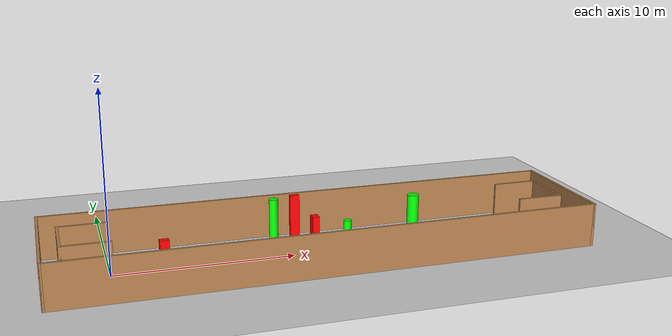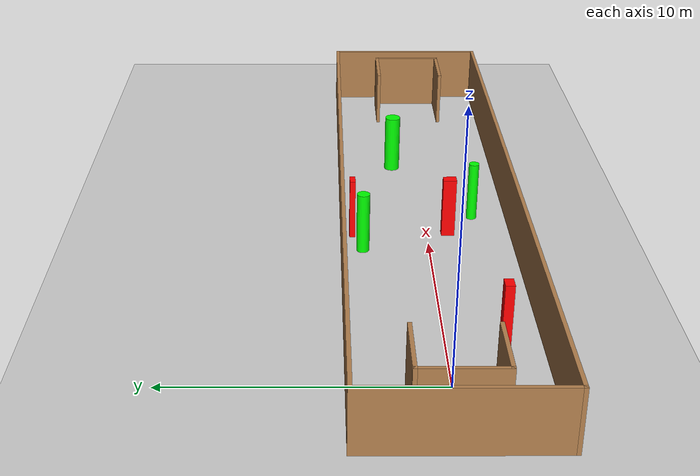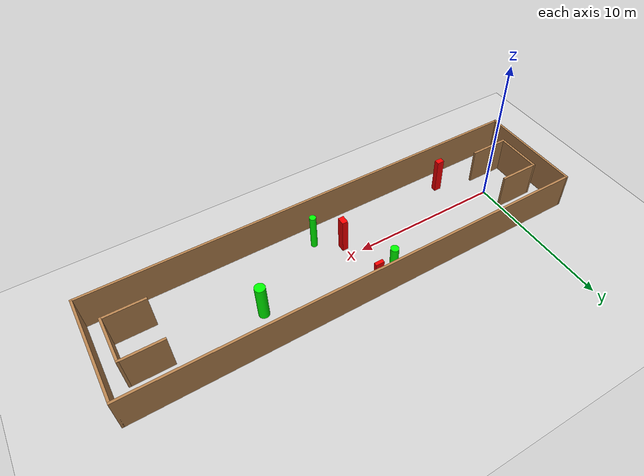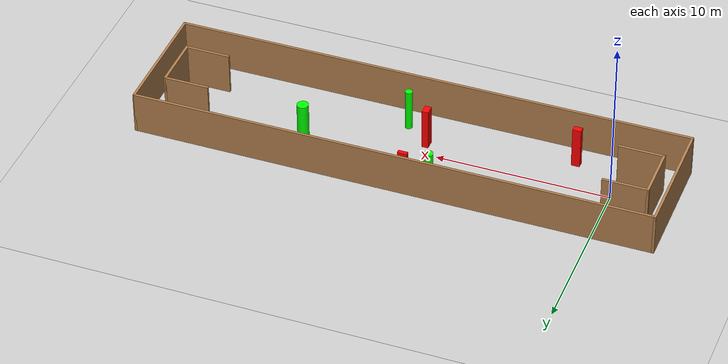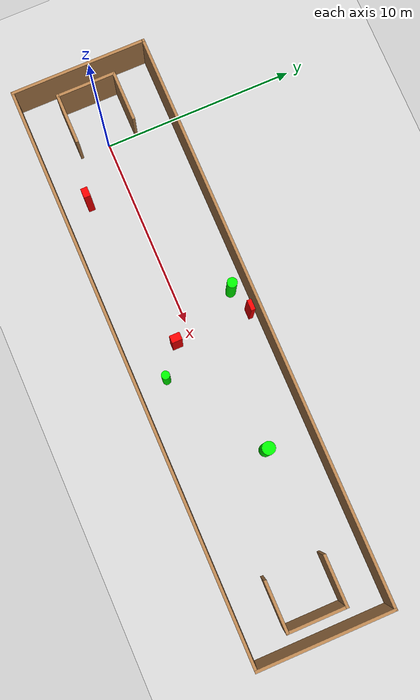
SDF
<sdf version="1.7">
 <world name="default">
  <light name="sun" type="directional">
   <pose>0 0 10 0 -0 0</pose>
   <diffuse>0.8 0.8 0.8 1</diffuse>
   <specular>0.2 0.2 0.2 1</specular>
   <attenuation>
    <range>1000</range>
    <constant>0.9</constant>
    <linear>0.01</linear>
    <quadratic>0.001</quadratic>
   </attenuation>
   <direction>-0.5 0.1 -0.9</direction>
   <spot><inner_angle>0</inner_angle><outer_angle>0</outer_angle><falloff>0</falloff></spot>
  </light>
  <model name="ground_plane">
   <static>1</static>
   <link name="link">
    <collision name="collision">
     <geometry><plane><normal>0 0 1</normal><size>100 100</size></plane></geometry>
     <surface>
      <contact><collide_bitmask>65535</collide_bitmask></contact>
      <friction><ode><mu>100</mu><mu2>50</mu2></ode></friction>
     </surface>
    </collision>
    <visual name="visual">
     <cast_shadows>0</cast_shadows>
     <geometry><plane><normal>0 0 1</normal><size>100 100</size></plane></geometry>
     <material>
      <script><uri>file://media/materials/scripts/gazebo.material</uri><name>Gazebo/Grey</name></script>
     </material>
    </visual>
   </link>
  </model>
  <gravity>0 0 -9.8</gravity>
  <magnetic_field>6e-06 2.3e-05 -4.2e-05</magnetic_field>
  <atmosphere type="adiabatic"/>
  <physics type="ode">
   <max_step_size>0.001</max_step_size>
   <real_time_factor>1</real_time_factor>
   <real_time_update_rate>1000</real_time_update_rate>
  </physics>
  <scene><ambient>0.4 0.4 0.4 1</ambient><background>0.7 0.7 0.7 1</background><shadows>1</shadows></scene>
  <spherical_coordinates>
   <surface_model>EARTH_WGS84</surface_model>
   <latitude_deg>0</latitude_deg>
   <longitude_deg>0</longitude_deg>
   <elevation>0</elevation>
   <heading_deg>0</heading_deg>
  </spherical_coordinates>
  <model name="my_base_walls">
   <link name="Wall_0">
    <collision name="Wall_0_Collision">
     <geometry><box><size>7.15 0.15 2.5</size></box></geometry>
     <pose>0 0 1.25 0 -0 0</pose>
    </collision>
    <visual name="Wall_0_Visual">
     <pose>0 0 1.25 0 -0 0</pose>
     <geometry><box><size>7.15 0.15 2.5</size></box></geometry>
     <material>
      <script><uri>file://media/materials/scripts/gazebo.material</uri><name>Gazebo/Wood</name></script>
      <ambient>1 1 1 1</ambient>
     </material>
     <meta><layer>0</layer></meta>
    </visual>
    <pose>-15 0 0 0 -0 1.5708</pose>
   </link>
   <link name="Wall_10">
    <collision name="Wall_10_Collision">
     <geometry><box><size>2.65 0.15 2.5</size></box></geometry>
     <pose>0 0 1.25 0 -0 0</pose>
    </collision>
    <visual name="Wall_10_Visual">
     <pose>0 0 1.25 0 -0 0</pose>
     <geometry><box><size>2.65 0.15 2.5</size></box></geometry>
     <material>
      <script><uri>file://media/materials/scripts/gazebo.material</uri><name>Gazebo/Wood</name></script>
      <ambient>1 1 1 1</ambient>
     </material>
     <meta><layer>0</layer></meta>
    </visual>
    <pose>-12.75 -1.5 0 0 -0 0</pose>
   </link>
   <link name="Wall_12">
    <collision name="Wall_12_Collision">
     <geometry><box><size>2.65 0.15 2.5</size></box></geometry>
     <pose>0 0 1.25 0 -0 0</pose>
    </collision>
    <visual name="Wall_12_Visual">
     <pose>0 0 1.25 0 -0 0</pose>
     <geometry><box><size>2.65 0.15 2.5</size></box></geometry>
     <material>
      <script><uri>file://media/materials/scripts/gazebo.material</uri><name>Gazebo/Wood</name></script>
      <ambient>1 1 1 1</ambient>
     </material>
     <meta><layer>0</layer></meta>
    </visual>
    <pose>-12.75 1.5 0 0 -0 0</pose>
   </link>
   <link name="Wall_14">
    <collision name="Wall_14_Collision">
     <geometry><box><size>3.15 0.15 2.5</size></box></geometry>
     <pose>0 0 1.25 0 -0 0</pose>
    </collision>
    <visual name="Wall_14_Visual">
     <pose>0 0 1.25 0 -0 0</pose>
     <geometry><box><size>3.15 0.15 2.5</size></box></geometry>
     <material>
      <script><uri>file://media/materials/scripts/gazebo.material</uri><name>Gazebo/Wood</name></script>
      <ambient>1 1 1 1</ambient>
     </material>
     <meta><layer>0</layer></meta>
    </visual>
    <pose>14 0 0 0 -0 -1.5708</pose>
   </link>
   <link name="Wall_15">
    <collision name="Wall_15_Collision">
     <geometry><box><size>2.65 0.15 2.5</size></box></geometry>
     <pose>0 0 1.25 0 -0 0</pose>
    </collision>
    <visual name="Wall_15_Visual">
     <pose>0 0 1.25 0 -0 0</pose>
     <geometry><box><size>2.65 0.15 2.5</size></box></geometry>
     <material>
      <script><uri>file://media/materials/scripts/gazebo.material</uri><name>Gazebo/Wood</name></script>
      <ambient>1 1 1 1</ambient>
     </material>
     <meta><layer>0</layer></meta>
    </visual>
    <pose>12.75 -1.5 0 0 -0 3.14159</pose>
   </link>
   <link name="Wall_17">
    <collision name="Wall_17_Collision">
     <geometry><box><size>2.65 0.15 2.5</size></box></geometry>
     <pose>0 0 1.25 0 -0 0</pose>
    </collision>
    <visual name="Wall_17_Visual">
     <pose>0 0 1.25 0 -0 0</pose>
     <geometry><box><size>2.65 0.15 2.5</size></box></geometry>
     <material>
      <script><uri>file://media/materials/scripts/gazebo.material</uri><name>Gazebo/Wood</name></script>
      <ambient>1 1 1 1</ambient>
     </material>
     <meta><layer>0</layer></meta>
    </visual>
    <pose>12.75 1.5 0 0 -0 3.14159</pose>
   </link>
   <link name="Wall_2">
    <collision name="Wall_2_Collision">
     <geometry><box><size>30.15 0.15 2.5</size></box></geometry>
     <pose>0 0 1.25 0 -0 0</pose>
    </collision>
    <visual name="Wall_2_Visual">
     <pose>0 0 1.25 0 -0 0</pose>
     <geometry><box><size>30.15 0.15 2.5</size></box></geometry>
     <material>
      <script><uri>file://media/materials/scripts/gazebo.material</uri><name>Gazebo/Wood</name></script>
      <ambient>1 1 1 1</ambient>
     </material>
     <meta><layer>0</layer></meta>
    </visual>
    <pose>-0 -3.5 0 0 -0 0</pose>
   </link>
   <link name="Wall_4">
    <collision name="Wall_4_Collision">
     <geometry><box><size>30.15 0.15 2.5</size></box></geometry>
     <pose>0 0 1.25 0 -0 0</pose>
    </collision>
    <visual name="Wall_4_Visual">
     <pose>0 0 1.25 0 -0 0</pose>
     <geometry><box><size>30.15 0.15 2.5</size></box></geometry>
     <material>
      <script><uri>file://media/materials/scripts/gazebo.material</uri><name>Gazebo/Wood</name></script>
      <ambient>1 1 1 1</ambient>
     </material>
     <meta><layer>0</layer></meta>
    </visual>
    <pose>-0 3.5 0 0 -0 0</pose>
   </link>
   <link name="Wall_6">
    <collision name="Wall_6_Collision">
     <geometry><box><size>7.15 0.15 2.5</size></box></geometry>
     <pose>0 0 1.25 0 -0 0</pose>
    </collision>
    <visual name="Wall_6_Visual">
     <pose>0 0 1.25 0 -0 0</pose>
     <geometry><box><size>7.15 0.15 2.5</size></box></geometry>
     <material>
      <script><uri>file://media/materials/scripts/gazebo.material</uri><name>Gazebo/Wood</name></script>
      <ambient>1 1 1 1</ambient>
     </material>
     <meta><layer>0</layer></meta>
    </visual>
    <pose>15 0 0 0 -0 -1.5708</pose>
   </link>
   <link name="Wall_9">
    <collision name="Wall_9_Collision">
     <geometry><box><size>3.15 0.15 2.5</size></box></geometry>
     <pose>0 0 1.25 0 -0 0</pose>
    </collision>
    <visual name="Wall_9_Visual">
     <pose>0 0 1.25 0 -0 0</pose>
     <geometry><box><size>3.15 0.15 2.5</size></box></geometry>
     <material>
      <script><uri>file://media/materials/scripts/gazebo.material</uri><name>Gazebo/Wood</name></script>
      <ambient>1 1 1 1</ambient>
     </material>
     <meta><layer>0</layer></meta>
    </visual>
    <pose>-14 0 0 0 -0 -1.5708</pose>
   </link>
   <static>1</static>
   <pose>11.5 0 0 0 -0 0</pose>
  </model>
  <model name="cylinder1">
   <static>1</static>
   <link name="link">
    <inertial>
     <mass>1</mass>
     <inertia><ixx>0.5</ixx><ixy>0</ixy><ixz>0</ixz><iyy>0.5</iyy><iyz>0</iyz><izz>1</izz></inertia>
    </inertial>
    <collision name="collision">
     <geometry><cylinder><radius>0.25907097742743457</radius><length>2.5</length></cylinder></geometry>
    </collision>
    <visual name="visual">
     <geometry><cylinder><radius>0.25907097742743457</radius><length>2.5</length></cylinder></geometry>
     <material>
      <ambient>0 1 0 1</ambient>
      <diffuse>0 1 0 1</diffuse>
      <specular>0.1 0.1 0.1 1</specular>
      <emissive>0 0 0 0</emissive>
     </material>
    </visual>
   </link>
   <pose>9.498819497092915 2.6853807154620712 1.25 0 0 0</pose>
  </model>
  <model name="cylinder2">
   <static>1</static>
   <link name="link">
    <inertial>
     <mass>1</mass>
     <inertia><ixx>0.5</ixx><ixy>0</ixy><ixz>0</ixz><iyy>0.5</iyy><iyz>0</iyz><izz>1</izz></inertia>
    </inertial>
    <collision name="collision">
     <geometry><cylinder><radius>0.3341498275799542</radius><length>2.5</length></cylinder></geometry>
    </collision>
    <visual name="visual">
     <geometry><cylinder><radius>0.3341498275799542</radius><length>2.5</length></cylinder></geometry>
     <material>
      <ambient>0 1 0 1</ambient>
      <diffuse>0 1 0 1</diffuse>
      <specular>0.1 0.1 0.1 1</specular>
      <emissive>0 0 0 0</emissive>
     </material>
    </visual>
   </link>
   <pose>17.44026969455144 1.1111018340277674 1.25 0 0 0</pose>
  </model>
  <model name="cylinder3">
   <static>1</static>
   <link name="link">
    <inertial>
     <mass>1</mass>
     <inertia><ixx>0.5</ixx><ixy>0</ixy><ixz>0</ixz><iyy>0.5</iyy><iyz>0</iyz><izz>1</izz></inertia>
    </inertial>
    <collision name="collision">
     <geometry><cylinder><radius>0.21233428416815298</radius><length>2.5</length></cylinder></geometry>
    </collision>
    <visual name="visual">
     <geometry><cylinder><radius>0.21233428416815298</radius><length>2.5</length></cylinder></geometry>
     <material>
      <ambient>0 1 0 1</ambient>
      <diffuse>0 1 0 1</diffuse>
      <specular>0.1 0.1 0.1 1</specular>
      <emissive>0 0 0 0</emissive>
     </material>
    </visual>
   </link>
   <pose>12.357870774014712 -2.004052245603533 1.25 0 0 0</pose>
  </model>
  <model name="box1">
   <static>1</static>
   <link name="link">
    <inertial>
     <mass>1</mass>
     <inertia><ixx>0.083</ixx><ixy>0</ixy><ixz>0</ixz><iyy>0.083</iyy><iyz>0</iyz><izz>0.083</izz></inertia>
    </inertial>
    <collision name="collision">
     <geometry><box><size>0.38176033665293707 0.5338177229446267 2.5</size></box></geometry>
    </collision>
    <visual name="visual">
     <geometry><box><size>0.38176033665293707 0.5338177229446267 2.5</size></box></geometry>
     <material>
      <ambient>1 0 0 1</ambient>
      <diffuse>1 0 0 1</diffuse>
      <specular>0.1 0.1 0.1 1</specular>
      <emissive>0 0 0 0</emissive>
     </material>
    </visual>
    <sensor name="my_contact" type="contact">
     <contact><collision>box_collision</collision><topic>__default_topic__</topic></contact>
    </sensor>
   </link>
   <pose>10.892803442948093 -0.8552905539492373 1.25 0 0 0</pose>
  </model>
  <model name="box2">
   <static>1</static>
   <link name="link">
    <inertial>
     <mass>1</mass>
     <inertia><ixx>0.083</ixx><ixy>0</ixy><ixz>0</ixz><iyy>0.083</iyy><iyz>0</iyz><izz>0.083</izz></inertia>
    </inertial>
    <collision name="collision">
     <geometry><box><size>0.5536366266542554 0.22513640946082214 2.5</size></box></geometry>
    </collision>
    <visual name="visual">
     <geometry><box><size>0.5536366266542554 0.22513640946082214 2.5</size></box></geometry>
     <material>
      <ambient>1 0 0 1</ambient>
      <diffuse>1 0 0 1</diffuse>
      <specular>0.1 0.1 0.1 1</specular>
      <emissive>0 0 0 0</emissive>
     </material>
    </visual>
    <sensor name="my_contact" type="contact">
     <contact><collision>box_collision</collision><topic>__default_topic__</topic></contact>
    </sensor>
   </link>
   <pose>10.84982304424855 3.09073977815763 1.25 0 0 0</pose>
  </model>
  <model name="box3">
   <static>1</static>
   <link name="link">
    <inertial>
     <mass>1</mass>
     <inertia><ixx>0.083</ixx><ixy>0</ixy><ixz>0</ixz><iyy>0.083</iyy><iyz>0</iyz><izz>0.083</izz></inertia>
    </inertial>
    <collision name="collision">
     <geometry><box><size>0.49278660163090793 0.346201300868022 2.5</size></box></geometry>
    </collision>
    <visual name="visual">
     <geometry><box><size>0.49278660163090793 0.346201300868022 2.5</size></box></geometry>
     <material>
      <ambient>1 0 0 1</ambient>
      <diffuse>1 0 0 1</diffuse>
      <specular>0.1 0.1 0.1 1</specular>
      <emissive>0 0 0 0</emissive>
     </material>
    </visual>
    <sensor name="my_contact" type="contact">
     <contact><collision>box_collision</collision><topic>__default_topic__</topic></contact>
    </sensor>
   </link>
   <pose>2.588832907401116 -2.098362470197003 1.25 0 0 0</pose>
  </model>
 </world>
</sdf>
